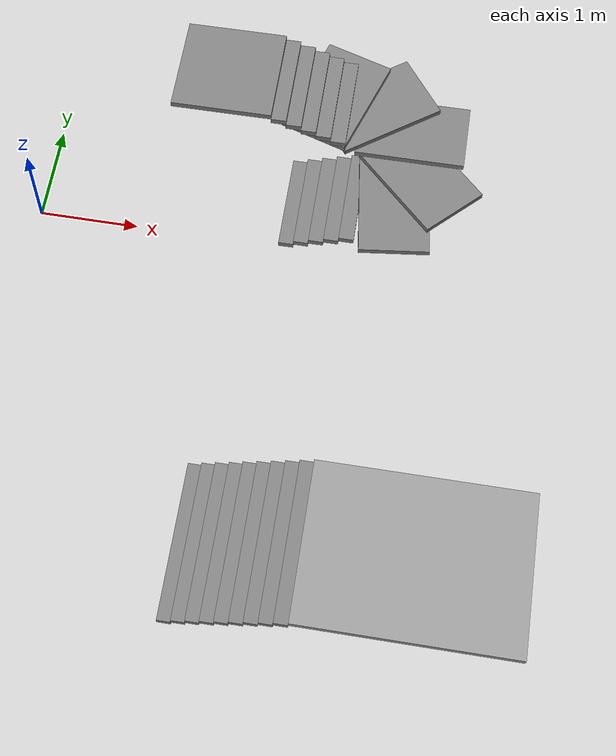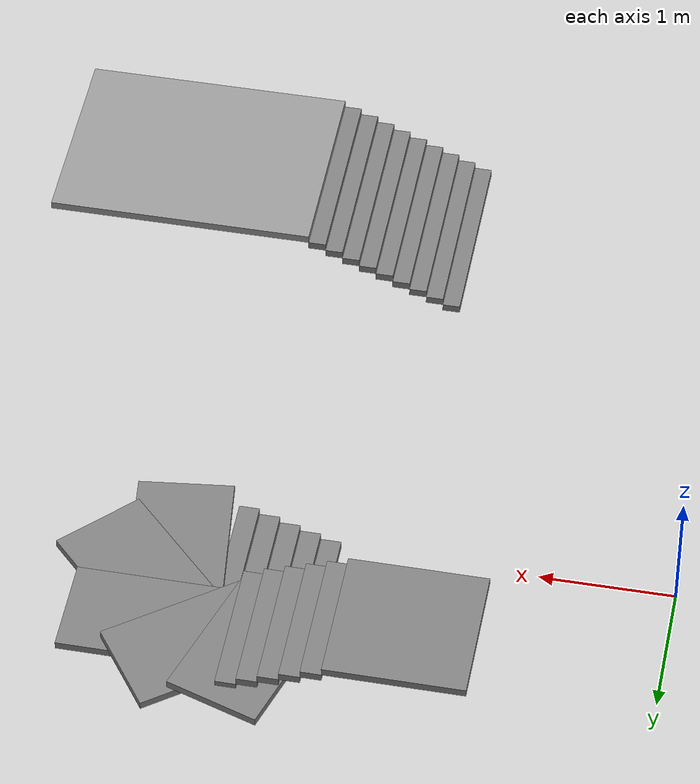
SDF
<sdf version='1.10'>
  <world name='empty'>
    <physics name='1ms' type='ignored'>
      <max_step_size>0.001</max_step_size>
      <real_time_factor>1</real_time_factor>
      <real_time_update_rate>1000</real_time_update_rate>
    </physics>
    <plugin name='gz::sim::systems::Physics' filename='gz-sim-physics-system'/>
    <plugin name='gz::sim::systems::UserCommands' filename='gz-sim-user-commands-system'/>
    <plugin name='gz::sim::systems::SceneBroadcaster' filename='gz-sim-scene-broadcaster-system'/>
    <plugin name='gz::sim::systems::Contact' filename='gz-sim-contact-system'/>
    <plugin name='gz::sim::systems::Imu' filename='gz-sim-imu-system'/>
    <plugin name='gz::sim::systems::Sensors' filename='gz-sim-sensors-system'>
      <render_engine>ogre2</render_engine>
    </plugin>
    <gravity>0 0 -9.8000000000000007</gravity>
    <magnetic_field>5.5644999999999998e-06 2.2875799999999999e-05 -4.2388400000000002e-05</magnetic_field>
    <atmosphere type='adiabatic'/>
    <scene>
      <ambient>0.400000006 0.400000006 0.400000006 1</ambient>
      <background>0.699999988 0.699999988 0.699999988 1</background>
      <shadows>true</shadows>
    </scene>
    <model name='ground_plane'>
      <static>true</static>
      <link name='link'>
        <collision name='collision'>
          <geometry>
            <plane>
              <normal>0 0 1</normal>
              <size>100 100</size>
            </plane>
          </geometry>
          <surface>
            <friction>
              <ode/>
            </friction>
            <bounce/>
            <contact/>
          </surface>
        </collision>
        <visual name='visual'>
          <geometry>
            <plane>
              <normal>0 0 1</normal>
              <size>100 100</size>
            </plane>
          </geometry>
          <material>
            <ambient>0.800000012 0.800000012 0.800000012 1</ambient>
            <diffuse>0.800000012 0.800000012 0.800000012 1</diffuse>
            <specular>0.800000012 0.800000012 0.800000012 1</specular>
          </material>
        </visual>
        <pose>0 0 0 0 0 0</pose>
        <inertial>
          <pose>0 0 0 0 0 0</pose>
          <mass>1</mass>
          <inertia>
            <ixx>1</ixx>
            <ixy>0</ixy>
            <ixz>0</ixz>
            <iyy>1</iyy>
            <iyz>0</iyz>
            <izz>1</izz>
          </inertia>
        </inertial>
        <enable_wind>false</enable_wind>
      </link>
      <pose>0 0 0 0 0 0</pose>
      <self_collide>false</self_collide>
    </model>
    <model name='u_winder_staircase'>
      <static>true</static>
      <pose>2.4505798816680908 0 0.017017757520079613 0 0 0</pose>
      <self_collide>false</self_collide>
      <link name='f1_step1'>
        <pose>0.074999999999999997 0.5 0.030300000000000001 0 0 0</pose>
        <collision name='col'>
          <geometry>
            <box>
              <size>0.14999999999999999 1 0.060600000000000001</size>
            </box>
          </geometry>
          <surface>
            <friction>
              <ode>
                <mu>1</mu>
                <mu2>1</mu2>
              </ode>
            </friction>
            <bounce/>
            <contact/>
          </surface>
        </collision>
        <visual name='vis'>
          <geometry>
            <box>
              <size>0.14999999999999999 1 0.060600000000000001</size>
            </box>
          </geometry>
          <material>
            <ambient>0.200000003 0.200000003 0.200000003 1</ambient>
            <diffuse>0.5 0.5 0.5 1</diffuse>
          </material>
        </visual>
        <inertial>
          <pose>0 0 0 0 0 0</pose>
          <mass>1</mass>
          <inertia>
            <ixx>1</ixx>
            <ixy>0</ixy>
            <ixz>0</ixz>
            <iyy>1</iyy>
            <iyz>0</iyz>
            <izz>1</izz>
          </inertia>
        </inertial>
        <enable_wind>false</enable_wind>
      </link>
      <link name='f1_step2'>
        <pose>0.22500000000000009 0.5 0.090899999999999995 0 0 0</pose>
        <collision name='col'>
          <geometry>
            <box>
              <size>0.14999999999999999 1 0.060600000000000001</size>
            </box>
          </geometry>
          <surface>
            <friction>
              <ode>
                <mu>1</mu>
                <mu2>1</mu2>
              </ode>
            </friction>
            <bounce/>
            <contact/>
          </surface>
        </collision>
        <visual name='vis'>
          <geometry>
            <box>
              <size>0.14999999999999999 1 0.060600000000000001</size>
            </box>
          </geometry>
          <material>
            <ambient>0.200000003 0.200000003 0.200000003 1</ambient>
            <diffuse>0.5 0.5 0.5 1</diffuse>
          </material>
        </visual>
        <inertial>
          <pose>0 0 0 0 0 0</pose>
          <mass>1</mass>
          <inertia>
            <ixx>1</ixx>
            <ixy>0</ixy>
            <ixz>0</ixz>
            <iyy>1</iyy>
            <iyz>0</iyz>
            <izz>1</izz>
          </inertia>
        </inertial>
        <enable_wind>false</enable_wind>
      </link>
      <link name='f1_step3'>
        <pose>0.375 0.5 0.1515 0 0 0</pose>
        <collision name='col'>
          <geometry>
            <box>
              <size>0.14999999999999999 1 0.060600000000000001</size>
            </box>
          </geometry>
          <surface>
            <friction>
              <ode>
                <mu>1</mu>
                <mu2>1</mu2>
              </ode>
            </friction>
            <bounce/>
            <contact/>
          </surface>
        </collision>
        <visual name='vis'>
          <geometry>
            <box>
              <size>0.14999999999999999 1 0.060600000000000001</size>
            </box>
          </geometry>
          <material>
            <ambient>0.200000003 0.200000003 0.200000003 1</ambient>
            <diffuse>0.5 0.5 0.5 1</diffuse>
          </material>
        </visual>
        <inertial>
          <pose>0 0 0 0 0 0</pose>
          <mass>1</mass>
          <inertia>
            <ixx>1</ixx>
            <ixy>0</ixy>
            <ixz>0</ixz>
            <iyy>1</iyy>
            <iyz>0</iyz>
            <izz>1</izz>
          </inertia>
        </inertial>
        <enable_wind>false</enable_wind>
      </link>
      <link name='f1_step4'>
        <pose>0.52499999999999991 0.5 0.21210000000000001 0 0 0</pose>
        <collision name='col'>
          <geometry>
            <box>
              <size>0.14999999999999999 1 0.060600000000000001</size>
            </box>
          </geometry>
          <surface>
            <friction>
              <ode>
                <mu>1</mu>
                <mu2>1</mu2>
              </ode>
            </friction>
            <bounce/>
            <contact/>
          </surface>
        </collision>
        <visual name='vis'>
          <geometry>
            <box>
              <size>0.14999999999999999 1 0.060600000000000001</size>
            </box>
          </geometry>
          <material>
            <ambient>0.200000003 0.200000003 0.200000003 1</ambient>
            <diffuse>0.5 0.5 0.5 1</diffuse>
          </material>
        </visual>
        <inertial>
          <pose>0 0 0 0 0 0</pose>
          <mass>1</mass>
          <inertia>
            <ixx>1</ixx>
            <ixy>0</ixy>
            <ixz>0</ixz>
            <iyy>1</iyy>
            <iyz>0</iyz>
            <izz>1</izz>
          </inertia>
        </inertial>
        <enable_wind>false</enable_wind>
      </link>
      <link name='f1_step5'>
        <pose>0.67499999999999982 0.5 0.2727 0 0 0</pose>
        <collision name='col'>
          <geometry>
            <box>
              <size>0.14999999999999999 1 0.060600000000000001</size>
            </box>
          </geometry>
          <surface>
            <friction>
              <ode>
                <mu>1</mu>
                <mu2>1</mu2>
              </ode>
            </friction>
            <bounce/>
            <contact/>
          </surface>
        </collision>
        <visual name='vis'>
          <geometry>
            <box>
              <size>0.14999999999999999 1 0.060600000000000001</size>
            </box>
          </geometry>
          <material>
            <ambient>0.200000003 0.200000003 0.200000003 1</ambient>
            <diffuse>0.5 0.5 0.5 1</diffuse>
          </material>
        </visual>
        <inertial>
          <pose>0 0 0 0 0 0</pose>
          <mass>1</mass>
          <inertia>
            <ixx>1</ixx>
            <ixy>0</ixy>
            <ixz>0</ixz>
            <iyy>1</iyy>
            <iyz>0</iyz>
            <izz>1</izz>
          </inertia>
        </inertial>
        <enable_wind>false</enable_wind>
      </link>
    </model>
    <model name='winder1'>
      <static>true</static>
      <self_collide>false</self_collide>
      <link name='winder1'>
        <pose>0.91069999999999995 0.50549999999999995 0.33329999999999999 0 0 -1.2565999999999999</pose>
        <collision name='col'>
          <geometry>
            <box>
              <size>1.1000000000000001 0.69999999999999996 0.060600000000000001</size>
            </box>
          </geometry>
          <surface>
            <friction>
              <ode>
                <mu>1</mu>
                <mu2>1</mu2>
              </ode>
            </friction>
            <bounce/>
            <contact/>
          </surface>
        </collision>
        <visual name='vis'>
          <geometry>
            <box>
              <size>1.1000000000000001 0.69999999999999996 0.060600000000000001</size>
            </box>
          </geometry>
          <material>
            <ambient>0.200000003 0.200000003 0.200000003 1</ambient>
            <diffuse>0.5 0.5 0.5 1</diffuse>
          </material>
        </visual>
        <inertial>
          <pose>0 0 0 0 0 0</pose>
          <mass>1</mass>
          <inertia>
            <ixx>1</ixx>
            <ixy>0</ixy>
            <ixz>0</ixz>
            <iyy>1</iyy>
            <iyz>0</iyz>
            <izz>1</izz>
          </inertia>
        </inertial>
        <enable_wind>false</enable_wind>
      </link>
      <pose>2.5530200004577637 0.1368789970874788 0.013767619617283289 0 0 -0.195955003317169</pose>
    </model>
    <model name='winder2'>
      <static>true</static>
      <self_collide>false</self_collide>
      <link name='winder2'>
        <pose>1.1706000000000001 0.69430000000000003 0.39389999999999997 0 0 -0.62829999999999997</pose>
        <collision name='col'>
          <geometry>
            <box>
              <size>1.1000000000000001 0.69999999999999996 0.060600000000000001</size>
            </box>
          </geometry>
          <surface>
            <friction>
              <ode>
                <mu>1</mu>
                <mu2>1</mu2>
              </ode>
            </friction>
            <bounce/>
            <contact/>
          </surface>
        </collision>
        <visual name='vis'>
          <geometry>
            <box>
              <size>1.1000000000000001 0.69999999999999996 0.060600000000000001</size>
            </box>
          </geometry>
          <material>
            <ambient>0.200000003 0.200000003 0.200000003 1</ambient>
            <diffuse>0.5 0.5 0.5 1</diffuse>
          </material>
        </visual>
        <inertial>
          <pose>0 0 0 0 0 0</pose>
          <mass>1</mass>
          <inertia>
            <ixx>1</ixx>
            <ixy>0</ixy>
            <ixz>0</ixz>
            <iyy>1</iyy>
            <iyz>0</iyz>
            <izz>1</izz>
          </inertia>
        </inertial>
        <enable_wind>false</enable_wind>
      </link>
      <pose>2.4977977275848393 0.30378672480583185 0.012597099877893869 0 0 -0.16038600562724256</pose>
    </model>
    <model name='winder3'>
      <static>true</static>
      <self_collide>false</self_collide>
      <link name='winder3'>
        <pose>1.27 1 0.45450000000000002 0 0 0</pose>
        <collision name='col'>
          <geometry>
            <box>
              <size>1.1000000000000001 0.69999999999999996 0.060600000000000001</size>
            </box>
          </geometry>
          <surface>
            <friction>
              <ode>
                <mu>1</mu>
                <mu2>1</mu2>
              </ode>
            </friction>
            <bounce/>
            <contact/>
          </surface>
        </collision>
        <visual name='vis'>
          <geometry>
            <box>
              <size>1.1000000000000001 0.69999999999999996 0.060600000000000001</size>
            </box>
          </geometry>
          <material>
            <ambient>0.200000003 0.200000003 0.200000003 1</ambient>
            <diffuse>0.5 0.5 0.5 1</diffuse>
          </material>
        </visual>
        <inertial>
          <pose>0 0 0 0 0 0</pose>
          <mass>1</mass>
          <inertia>
            <ixx>1</ixx>
            <ixy>0</ixy>
            <ixz>0</ixz>
            <iyy>1</iyy>
            <iyz>0</iyz>
            <izz>1</izz>
          </inertia>
        </inertial>
        <enable_wind>false</enable_wind>
      </link>
      <pose>2.3602499961853027 0.26912000775337219 0.018479669466614723 0 0 0</pose>
    </model>
    <model name='winder4'>
      <static>true</static>
      <self_collide>false</self_collide>
      <link name='winder4'>
        <pose>1.1706000000000001 1.3056000000000001 0.5151 0 0 0.62829999999999997</pose>
        <collision name='col'>
          <geometry>
            <box>
              <size>1.1000000000000001 0.69999999999999996 0.060600000000000001</size>
            </box>
          </geometry>
          <surface>
            <friction>
              <ode>
                <mu>1</mu>
                <mu2>1</mu2>
              </ode>
            </friction>
            <bounce/>
            <contact/>
          </surface>
        </collision>
        <visual name='vis'>
          <geometry>
            <box>
              <size>1.1000000000000001 0.69999999999999996 0.060600000000000001</size>
            </box>
          </geometry>
          <material>
            <ambient>0.200000003 0.200000003 0.200000003 1</ambient>
            <diffuse>0.5 0.5 0.5 1</diffuse>
          </material>
        </visual>
        <inertial>
          <pose>0 0 0 0 0 0</pose>
          <mass>1</mass>
          <inertia>
            <ixx>1</ixx>
            <ixy>0</ixy>
            <ixz>0</ixz>
            <iyy>1</iyy>
            <iyz>0</iyz>
            <izz>1</izz>
          </inertia>
        </inertial>
        <enable_wind>false</enable_wind>
      </link>
      <pose>2.0561199188232422 0.1692579984664917 0.022749399766325951 0 0 5.5511151231257827e-16</pose>
    </model>
    <model name='winder5'>
      <static>true</static>
      <self_collide>false</self_collide>
      <link name='winder5'>
        <pose>0.91069999999999995 1.4944 0.57569999999999999 0 0 1.2565999999999999</pose>
        <collision name='col'>
          <geometry>
            <box>
              <size>1.1000000000000001 0.69999999999999996 0.060600000000000001</size>
            </box>
          </geometry>
          <surface>
            <friction>
              <ode>
                <mu>1</mu>
                <mu2>1</mu2>
              </ode>
            </friction>
            <bounce/>
            <contact/>
          </surface>
        </collision>
        <visual name='vis'>
          <geometry>
            <box>
              <size>1.1000000000000001 0.69999999999999996 0.060600000000000001</size>
            </box>
          </geometry>
          <material>
            <ambient>0.200000003 0.200000003 0.200000003 1</ambient>
            <diffuse>0.5 0.5 0.5 1</diffuse>
          </material>
        </visual>
        <inertial>
          <pose>0 0 0 0 0 0</pose>
          <mass>1</mass>
          <inertia>
            <ixx>1</ixx>
            <ixy>0</ixy>
            <ixz>0</ixz>
            <iyy>1</iyy>
            <iyz>0</iyz>
            <izz>1</izz>
          </inertia>
        </inertial>
        <enable_wind>false</enable_wind>
      </link>
      <pose>1.9018399715423584 -4.4408920985006262e-16 0.025913236662745476 0 0 -3.3306690738754696e-16</pose>
    </model>
    <model name='f2_steps'>
      <static>true</static>
      <self_collide>false</self_collide>
      <link name='f2_step1'>
        <pose>0.67500000000000004 1.5 0.69689999999999996 0 0 0</pose>
        <collision name='col'>
          <geometry>
            <box>
              <size>0.14999999999999999 1 0.060600000000000001</size>
            </box>
          </geometry>
          <surface>
            <friction>
              <ode>
                <mu>1</mu>
                <mu2>1</mu2>
              </ode>
            </friction>
            <bounce/>
            <contact/>
          </surface>
        </collision>
        <visual name='vis'>
          <geometry>
            <box>
              <size>0.14999999999999999 1 0.060600000000000001</size>
            </box>
          </geometry>
          <material>
            <ambient>0.200000003 0.200000003 0.200000003 1</ambient>
            <diffuse>0.5 0.5 0.5 1</diffuse>
          </material>
        </visual>
        <inertial>
          <pose>0 0 0 0 0 0</pose>
          <mass>1</mass>
          <inertia>
            <ixx>1</ixx>
            <ixy>0</ixy>
            <ixz>0</ixz>
            <iyy>1</iyy>
            <iyz>0</iyz>
            <izz>1</izz>
          </inertia>
        </inertial>
        <enable_wind>false</enable_wind>
      </link>
      <link name='f2_step2'>
        <pose>0.52500000000000036 1.5 0.75749999999999995 0 0 0</pose>
        <collision name='col'>
          <geometry>
            <box>
              <size>0.14999999999999999 1 0.060600000000000001</size>
            </box>
          </geometry>
          <surface>
            <friction>
              <ode>
                <mu>1</mu>
                <mu2>1</mu2>
              </ode>
            </friction>
            <bounce/>
            <contact/>
          </surface>
        </collision>
        <visual name='vis'>
          <geometry>
            <box>
              <size>0.14999999999999999 1 0.060600000000000001</size>
            </box>
          </geometry>
          <material>
            <ambient>0.200000003 0.200000003 0.200000003 1</ambient>
            <diffuse>0.5 0.5 0.5 1</diffuse>
          </material>
        </visual>
        <inertial>
          <pose>0 0 0 0 0 0</pose>
          <mass>1</mass>
          <inertia>
            <ixx>1</ixx>
            <ixy>0</ixy>
            <ixz>0</ixz>
            <iyy>1</iyy>
            <iyz>0</iyz>
            <izz>1</izz>
          </inertia>
        </inertial>
        <enable_wind>false</enable_wind>
      </link>
      <link name='f2_step3'>
        <pose>0.375 1.5 0.81810000000000005 0 0 0</pose>
        <collision name='col'>
          <geometry>
            <box>
              <size>0.14999999999999999 1 0.060600000000000001</size>
            </box>
          </geometry>
          <surface>
            <friction>
              <ode>
                <mu>1</mu>
                <mu2>1</mu2>
              </ode>
            </friction>
            <bounce/>
            <contact/>
          </surface>
        </collision>
        <visual name='vis'>
          <geometry>
            <box>
              <size>0.14999999999999999 1 0.060600000000000001</size>
            </box>
          </geometry>
          <material>
            <ambient>0.200000003 0.200000003 0.200000003 1</ambient>
            <diffuse>0.5 0.5 0.5 1</diffuse>
          </material>
        </visual>
        <inertial>
          <pose>0 0 0 0 0 0</pose>
          <mass>1</mass>
          <inertia>
            <ixx>1</ixx>
            <ixy>0</ixy>
            <ixz>0</ixz>
            <iyy>1</iyy>
            <iyz>0</iyz>
            <izz>1</izz>
          </inertia>
        </inertial>
        <enable_wind>false</enable_wind>
      </link>
      <link name='f2_step4'>
        <pose>0.22499999999999964 1.5 0.87870000000000004 0 0 0</pose>
        <collision name='col'>
          <geometry>
            <box>
              <size>0.14999999999999999 1 0.060600000000000001</size>
            </box>
          </geometry>
          <surface>
            <friction>
              <ode>
                <mu>1</mu>
                <mu2>1</mu2>
              </ode>
            </friction>
            <bounce/>
            <contact/>
          </surface>
        </collision>
        <visual name='vis'>
          <geometry>
            <box>
              <size>0.14999999999999999 1 0.060600000000000001</size>
            </box>
          </geometry>
          <material>
            <ambient>0.200000003 0.200000003 0.200000003 1</ambient>
            <diffuse>0.5 0.5 0.5 1</diffuse>
          </material>
        </visual>
        <inertial>
          <pose>0 0 0 0 0 0</pose>
          <mass>1</mass>
          <inertia>
            <ixx>1</ixx>
            <ixy>0</ixy>
            <ixz>0</ixz>
            <iyy>1</iyy>
            <iyz>0</iyz>
            <izz>1</izz>
          </inertia>
        </inertial>
        <enable_wind>false</enable_wind>
      </link>
      <link name='f2_step5'>
        <pose>0.075000000000000178 1.5 0.93930000000000002 0 0 0</pose>
        <collision name='col'>
          <geometry>
            <box>
              <size>0.14999999999999999 1 0.060600000000000001</size>
            </box>
          </geometry>
          <surface>
            <friction>
              <ode>
                <mu>1</mu>
                <mu2>1</mu2>
              </ode>
            </friction>
            <bounce/>
            <contact/>
          </surface>
        </collision>
        <visual name='vis'>
          <geometry>
            <box>
              <size>0.14999999999999999 1 0.060600000000000001</size>
            </box>
          </geometry>
          <material>
            <ambient>0.200000003 0.200000003 0.200000003 1</ambient>
            <diffuse>0.5 0.5 0.5 1</diffuse>
          </material>
        </visual>
        <inertial>
          <pose>0 0 0 0 0 0</pose>
          <mass>1</mass>
          <inertia>
            <ixx>1</ixx>
            <ixy>0</ixy>
            <ixz>0</ixz>
            <iyy>1</iyy>
            <iyz>0</iyz>
            <izz>1</izz>
          </inertia>
        </inertial>
        <enable_wind>false</enable_wind>
      </link>
      <link name='top_platform'>
        <pose>-0.5 1.5 0.99990000000000001 0 0 0</pose>
        <collision name='col'>
          <geometry>
            <box>
              <size>1 1 0.060600000000000001</size>
            </box>
          </geometry>
          <surface>
            <friction>
              <ode>
                <mu>1</mu>
                <mu2>1</mu2>
              </ode>
            </friction>
            <bounce/>
            <contact/>
          </surface>
        </collision>
        <visual name='vis'>
          <geometry>
            <box>
              <size>1 1 0.060600000000000001</size>
            </box>
          </geometry>
          <material>
            <ambient>0.200000003 0.200000003 0.200000003 1</ambient>
            <diffuse>0.5 0.5 0.5 1</diffuse>
          </material>
        </visual>
        <inertial>
          <pose>0 0 0 0 0 0</pose>
          <mass>1</mass>
          <inertia>
            <ixx>1</ixx>
            <ixy>0</ixy>
            <ixz>0</ixz>
            <iyy>1</iyy>
            <iyz>0</iyz>
            <izz>1</izz>
          </inertia>
        </inertial>
        <enable_wind>false</enable_wind>
      </link>
      <pose>2.232759952545166 -0.11906980723142624 -0.050365298986434937 0 0 0</pose>
    </model>
    <model name='staircase'>
      <static>true</static>
      <pose>2 -3.2300255298614502 0 0 0 0</pose>
      <link name='step_1'>
        <pose>0.065000000000000002 0 0.030300000000000001 0 0 0</pose>
        <collision name='collision'>
          <geometry>
            <box>
              <size>0.13 1.5 0.060600000000000001</size>
            </box>
          </geometry>
          <surface>
            <friction>
              <ode>
                <mu>1</mu>
                <mu2>1</mu2>
              </ode>
            </friction>
            <bounce/>
            <contact/>
          </surface>
        </collision>
        <visual name='visual'>
          <geometry>
            <box>
              <size>0.13 1.5 0.060600000000000001</size>
            </box>
          </geometry>
          <material>
            <ambient>0.200000003 0.200000003 0.200000003 1</ambient>
            <diffuse>0.5 0.5 0.5 1</diffuse>
          </material>
        </visual>
        <inertial>
          <pose>0 0 0 0 0 0</pose>
          <mass>1</mass>
          <inertia>
            <ixx>1</ixx>
            <ixy>0</ixy>
            <ixz>0</ixz>
            <iyy>1</iyy>
            <iyz>0</iyz>
            <izz>1</izz>
          </inertia>
        </inertial>
        <enable_wind>false</enable_wind>
      </link>
      <link name='step_2'>
        <pose>0.19499999999999984 0 0.090899999999999995 0 0 0</pose>
        <collision name='collision'>
          <geometry>
            <box>
              <size>0.13 1.5 0.060600000000000001</size>
            </box>
          </geometry>
          <surface>
            <friction>
              <ode>
                <mu>1</mu>
                <mu2>1</mu2>
              </ode>
            </friction>
            <bounce/>
            <contact/>
          </surface>
        </collision>
        <visual name='visual'>
          <geometry>
            <box>
              <size>0.13 1.5 0.060600000000000001</size>
            </box>
          </geometry>
          <material>
            <ambient>0.200000003 0.200000003 0.200000003 1</ambient>
            <diffuse>0.5 0.5 0.5 1</diffuse>
          </material>
        </visual>
        <inertial>
          <pose>0 0 0 0 0 0</pose>
          <mass>1</mass>
          <inertia>
            <ixx>1</ixx>
            <ixy>0</ixy>
            <ixz>0</ixz>
            <iyy>1</iyy>
            <iyz>0</iyz>
            <izz>1</izz>
          </inertia>
        </inertial>
        <enable_wind>false</enable_wind>
      </link>
      <link name='step_3'>
        <pose>0.32500000000000018 0 0.1515 0 0 0</pose>
        <collision name='collision'>
          <geometry>
            <box>
              <size>0.13 1.5 0.060600000000000001</size>
            </box>
          </geometry>
          <surface>
            <friction>
              <ode>
                <mu>1</mu>
                <mu2>1</mu2>
              </ode>
            </friction>
            <bounce/>
            <contact/>
          </surface>
        </collision>
        <visual name='visual'>
          <geometry>
            <box>
              <size>0.13 1.5 0.060600000000000001</size>
            </box>
          </geometry>
          <material>
            <ambient>0.200000003 0.200000003 0.200000003 1</ambient>
            <diffuse>0.5 0.5 0.5 1</diffuse>
          </material>
        </visual>
        <inertial>
          <pose>0 0 0 0 0 0</pose>
          <mass>1</mass>
          <inertia>
            <ixx>1</ixx>
            <ixy>0</ixy>
            <ixz>0</ixz>
            <iyy>1</iyy>
            <iyz>0</iyz>
            <izz>1</izz>
          </inertia>
        </inertial>
        <enable_wind>false</enable_wind>
      </link>
      <link name='step_4'>
        <pose>0.45500000000000007 0 0.21210000000000001 0 0 0</pose>
        <collision name='collision'>
          <geometry>
            <box>
              <size>0.13 1.5 0.060600000000000001</size>
            </box>
          </geometry>
          <surface>
            <friction>
              <ode>
                <mu>1</mu>
                <mu2>1</mu2>
              </ode>
            </friction>
            <bounce/>
            <contact/>
          </surface>
        </collision>
        <visual name='visual'>
          <geometry>
            <box>
              <size>0.13 1.5 0.060600000000000001</size>
            </box>
          </geometry>
          <material>
            <ambient>0.200000003 0.200000003 0.200000003 1</ambient>
            <diffuse>0.5 0.5 0.5 1</diffuse>
          </material>
        </visual>
        <inertial>
          <pose>0 0 0 0 0 0</pose>
          <mass>1</mass>
          <inertia>
            <ixx>1</ixx>
            <ixy>0</ixy>
            <ixz>0</ixz>
            <iyy>1</iyy>
            <iyz>0</iyz>
            <izz>1</izz>
          </inertia>
        </inertial>
        <enable_wind>false</enable_wind>
      </link>
      <link name='step_5'>
        <pose>0.58499999999999996 0 0.2727 0 0 0</pose>
        <collision name='collision'>
          <geometry>
            <box>
              <size>0.13 1.5 0.060600000000000001</size>
            </box>
          </geometry>
          <surface>
            <friction>
              <ode>
                <mu>1</mu>
                <mu2>1</mu2>
              </ode>
            </friction>
            <bounce/>
            <contact/>
          </surface>
        </collision>
        <visual name='visual'>
          <geometry>
            <box>
              <size>0.13 1.5 0.060600000000000001</size>
            </box>
          </geometry>
          <material>
            <ambient>0.200000003 0.200000003 0.200000003 1</ambient>
            <diffuse>0.5 0.5 0.5 1</diffuse>
          </material>
        </visual>
        <inertial>
          <pose>0 0 0 0 0 0</pose>
          <mass>1</mass>
          <inertia>
            <ixx>1</ixx>
            <ixy>0</ixy>
            <ixz>0</ixz>
            <iyy>1</iyy>
            <iyz>0</iyz>
            <izz>1</izz>
          </inertia>
        </inertial>
        <enable_wind>false</enable_wind>
      </link>
      <link name='step_6'>
        <pose>0.71499999999999986 0 0.33329999999999999 0 0 0</pose>
        <collision name='collision'>
          <geometry>
            <box>
              <size>0.13 1.5 0.060600000000000001</size>
            </box>
          </geometry>
          <surface>
            <friction>
              <ode>
                <mu>1</mu>
                <mu2>1</mu2>
              </ode>
            </friction>
            <bounce/>
            <contact/>
          </surface>
        </collision>
        <visual name='visual'>
          <geometry>
            <box>
              <size>0.13 1.5 0.060600000000000001</size>
            </box>
          </geometry>
          <material>
            <ambient>0.200000003 0.200000003 0.200000003 1</ambient>
            <diffuse>0.5 0.5 0.5 1</diffuse>
          </material>
        </visual>
        <inertial>
          <pose>0 0 0 0 0 0</pose>
          <mass>1</mass>
          <inertia>
            <ixx>1</ixx>
            <ixy>0</ixy>
            <ixz>0</ixz>
            <iyy>1</iyy>
            <iyz>0</iyz>
            <izz>1</izz>
          </inertia>
        </inertial>
        <enable_wind>false</enable_wind>
      </link>
      <link name='step_7'>
        <pose>0.84499999999999975 0 0.39389999999999997 0 0 0</pose>
        <collision name='collision'>
          <geometry>
            <box>
              <size>0.13 1.5 0.060600000000000001</size>
            </box>
          </geometry>
          <surface>
            <friction>
              <ode>
                <mu>1</mu>
                <mu2>1</mu2>
              </ode>
            </friction>
            <bounce/>
            <contact/>
          </surface>
        </collision>
        <visual name='visual'>
          <geometry>
            <box>
              <size>0.13 1.5 0.060600000000000001</size>
            </box>
          </geometry>
          <material>
            <ambient>0.200000003 0.200000003 0.200000003 1</ambient>
            <diffuse>0.5 0.5 0.5 1</diffuse>
          </material>
        </visual>
        <inertial>
          <pose>0 0 0 0 0 0</pose>
          <mass>1</mass>
          <inertia>
            <ixx>1</ixx>
            <ixy>0</ixy>
            <ixz>0</ixz>
            <iyy>1</iyy>
            <iyz>0</iyz>
            <izz>1</izz>
          </inertia>
        </inertial>
        <enable_wind>false</enable_wind>
      </link>
      <link name='step_8'>
        <pose>0.97500000000000009 0 0.45450000000000002 0 0 0</pose>
        <collision name='collision'>
          <geometry>
            <box>
              <size>0.13 1.5 0.060600000000000001</size>
            </box>
          </geometry>
          <surface>
            <friction>
              <ode>
                <mu>1</mu>
                <mu2>1</mu2>
              </ode>
            </friction>
            <bounce/>
            <contact/>
          </surface>
        </collision>
        <visual name='visual'>
          <geometry>
            <box>
              <size>0.13 1.5 0.060600000000000001</size>
            </box>
          </geometry>
          <material>
            <ambient>0.200000003 0.200000003 0.200000003 1</ambient>
            <diffuse>0.5 0.5 0.5 1</diffuse>
          </material>
        </visual>
        <inertial>
          <pose>0 0 0 0 0 0</pose>
          <mass>1</mass>
          <inertia>
            <ixx>1</ixx>
            <ixy>0</ixy>
            <ixz>0</ixz>
            <iyy>1</iyy>
            <iyz>0</iyz>
            <izz>1</izz>
          </inertia>
        </inertial>
        <enable_wind>false</enable_wind>
      </link>
      <link name='step_9'>
        <pose>1.105 0 0.5151 0 0 0</pose>
        <collision name='collision'>
          <geometry>
            <box>
              <size>0.13 1.5 0.060600000000000001</size>
            </box>
          </geometry>
          <surface>
            <friction>
              <ode>
                <mu>1</mu>
                <mu2>1</mu2>
              </ode>
            </friction>
            <bounce/>
            <contact/>
          </surface>
        </collision>
        <visual name='visual'>
          <geometry>
            <box>
              <size>0.13 1.5 0.060600000000000001</size>
            </box>
          </geometry>
          <material>
            <ambient>0.200000003 0.200000003 0.200000003 1</ambient>
            <diffuse>0.5 0.5 0.5 1</diffuse>
          </material>
        </visual>
        <inertial>
          <pose>0 0 0 0 0 0</pose>
          <mass>1</mass>
          <inertia>
            <ixx>1</ixx>
            <ixy>0</ixy>
            <ixz>0</ixz>
            <iyy>1</iyy>
            <iyz>0</iyz>
            <izz>1</izz>
          </inertia>
        </inertial>
        <enable_wind>false</enable_wind>
      </link>
      <link name='top_platform'>
        <pose>2.1699999999999999 0 0.57569999999999999 0 0 0</pose>
        <collision name='collision'>
          <geometry>
            <box>
              <size>2 1.5 0.060600000000000001</size>
            </box>
          </geometry>
          <surface>
            <friction>
              <ode>
                <mu>1</mu>
                <mu2>1</mu2>
              </ode>
            </friction>
            <bounce/>
            <contact/>
          </surface>
        </collision>
        <visual name='visual'>
          <geometry>
            <box>
              <size>2 1.5 0.060600000000000001</size>
            </box>
          </geometry>
          <material>
            <ambient>0.300000012 0.300000012 0.300000012 1</ambient>
            <diffuse>0.600000024 0.600000024 0.600000024 1</diffuse>
          </material>
        </visual>
        <inertial>
          <pose>0 0 0 0 0 0</pose>
          <mass>1</mass>
          <inertia>
            <ixx>1</ixx>
            <ixy>0</ixy>
            <ixz>0</ixz>
            <iyy>1</iyy>
            <iyz>0</iyz>
            <izz>1</izz>
          </inertia>
        </inertial>
        <enable_wind>false</enable_wind>
      </link>
      <self_collide>false</self_collide>
    </model>
    <light name='sun' type='directional'>
      <pose>0 0 10 0 0 0</pose>
      <cast_shadows>false</cast_shadows>
      <intensity>1</intensity>
      <direction>-0.5 0.10000000000000001 -0.90000000000000002</direction>
      <diffuse>1 1 1 1</diffuse>
      <specular>0.100000001 0.100000001 0.100000001 1</specular>
      <attenuation>
        <range>10</range>
        <linear>1</linear>
        <constant>1</constant>
        <quadratic>0</quadratic>
      </attenuation>
      <spot>
        <inner_angle>0</inner_angle>
        <outer_angle>0</outer_angle>
        <falloff>0</falloff>
      </spot>
    </light>
  </world>
</sdf>
